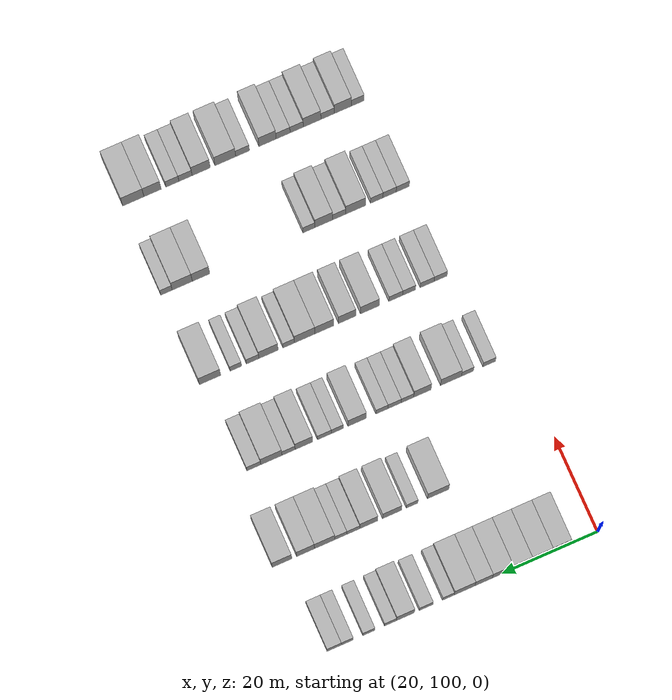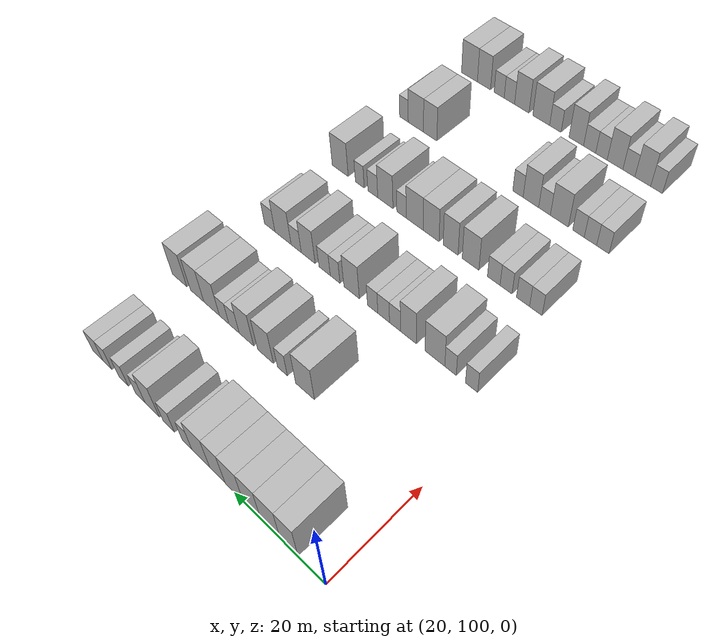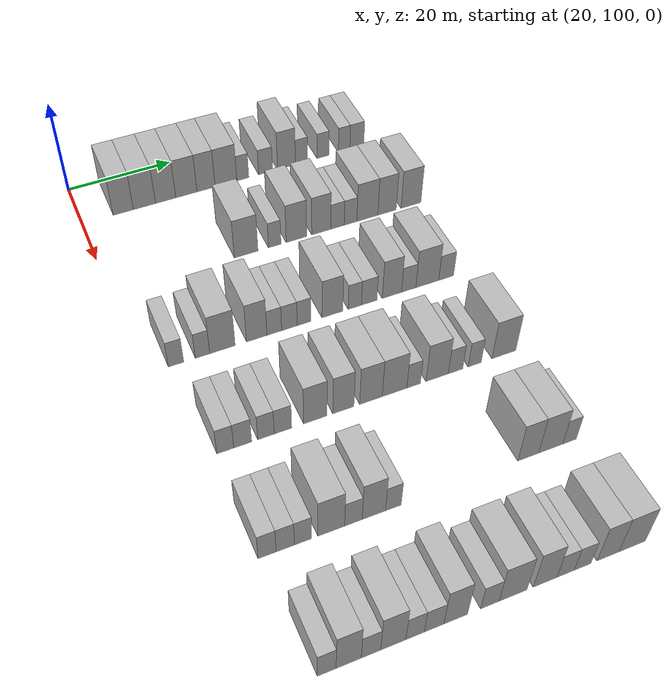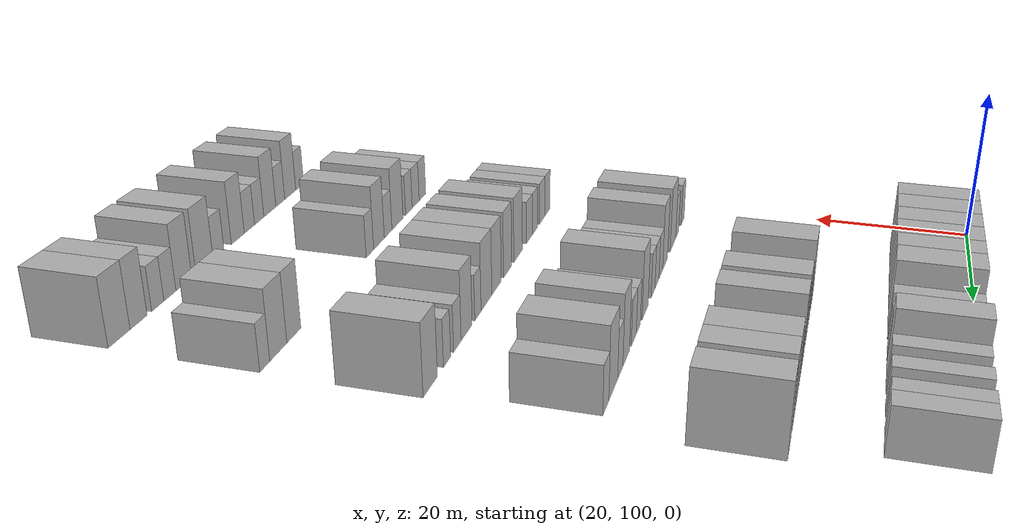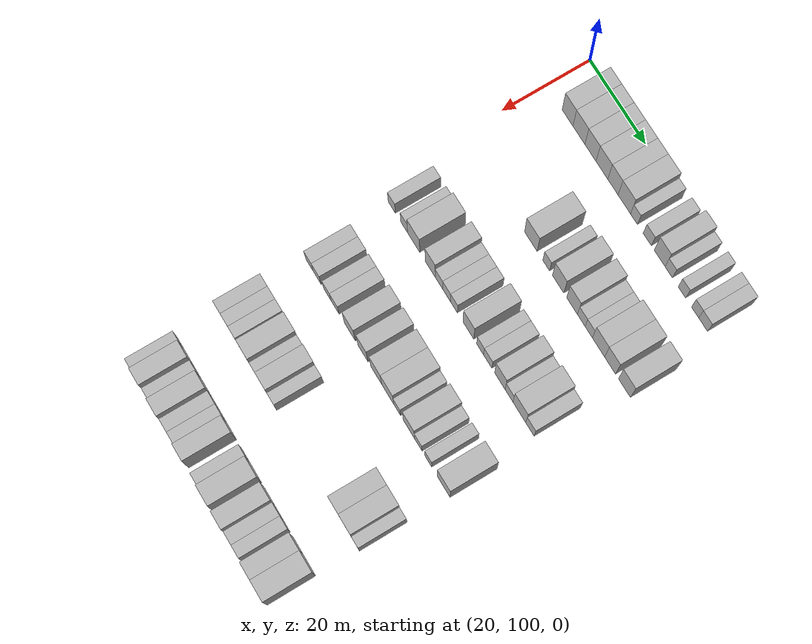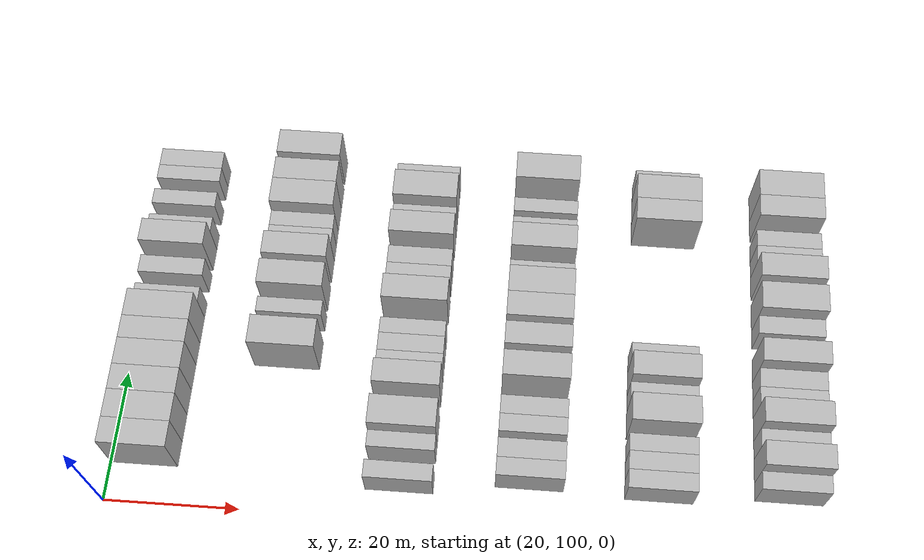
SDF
<sdf version="1.6">
 <world name="default">
  <model name="building_116">
   <static>1</static>
   <pose>25.0000 107.7792 0 0.000000 0.000000 0.000000</pose>
   <link name="link">
    <pose>0 0 4.50 0 0 0</pose>
    <collision name="collision"><geometry><box><size>10.0000 3.8784 9.0000</size></box></geometry></collision>
    <visual name="visual">
     <cast_shadows>0</cast_shadows>
     <geometry><box><size>10.0000 3.8784 9.0000</size></box></geometry>
     <material>
      <script>
       <uri>model://HANNAS_wall/materials/scripts</uri>
       <uri>model://HANNAS_wall/materials/textures</uri>
       <name>vrc/HANNAS_wall</name>
      </script>
     </material>
    </visual>
   </link>
  </model>
  <model name="building_117">
   <static>1</static>
   <pose>25.0000 111.8673 0 0.000000 0.000000 0.000000</pose>
   <link name="link">
    <pose>0 0 4.50 0 0 0</pose>
    <collision name="collision"><geometry><box><size>10.0000 4.2979 9.0000</size></box></geometry></collision>
    <visual name="visual">
     <cast_shadows>0</cast_shadows>
     <geometry><box><size>10.0000 4.2979 9.0000</size></box></geometry>
     <material>
      <script>
       <uri>model://HANNAS_wall/materials/scripts</uri>
       <uri>model://HANNAS_wall/materials/textures</uri>
       <name>vrc/HANNAS_wall</name>
      </script>
     </material>
    </visual>
   </link>
  </model>
  <model name="building_118">
   <static>1</static>
   <pose>25.0000 115.9936 0 0.000000 0.000000 0.000000</pose>
   <link name="link">
    <pose>0 0 4.50 0 0 0</pose>
    <collision name="collision"><geometry><box><size>10.0000 3.9547 9.0000</size></box></geometry></collision>
    <visual name="visual">
     <cast_shadows>0</cast_shadows>
     <geometry><box><size>10.0000 3.9547 9.0000</size></box></geometry>
     <material>
      <script>
       <uri>model://HANNAS_wall/materials/scripts</uri>
       <uri>model://HANNAS_wall/materials/textures</uri>
       <name>vrc/HANNAS_wall</name>
      </script>
     </material>
    </visual>
   </link>
  </model>
  <model name="building_119">
   <static>1</static>
   <pose>25.0000 120.0662 0 0.000000 0.000000 0.000000</pose>
   <link name="link">
    <pose>0 0 4.50 0 0 0</pose>
    <collision name="collision"><geometry><box><size>10.0000 4.1906 9.0000</size></box></geometry></collision>
    <visual name="visual">
     <cast_shadows>0</cast_shadows>
     <geometry><box><size>10.0000 4.1906 9.0000</size></box></geometry>
     <material>
      <script>
       <uri>model://HANNAS_wall/materials/scripts</uri>
       <uri>model://HANNAS_wall/materials/textures</uri>
       <name>vrc/HANNAS_wall</name>
      </script>
     </material>
    </visual>
   </link>
  </model>
  <model name="building_120">
   <static>1</static>
   <pose>25.0000 123.9743 0 0.000000 0.000000 0.000000</pose>
   <link name="link">
    <pose>0 0 4.50 0 0 0</pose>
    <collision name="collision"><geometry><box><size>10.0000 3.6255 9.0000</size></box></geometry></collision>
    <visual name="visual">
     <cast_shadows>0</cast_shadows>
     <geometry><box><size>10.0000 3.6255 9.0000</size></box></geometry>
     <material>
      <script>
       <uri>model://HANNAS_wall/materials/scripts</uri>
       <uri>model://HANNAS_wall/materials/textures</uri>
       <name>vrc/HANNAS_wall</name>
      </script>
     </material>
    </visual>
   </link>
  </model>
  <model name="building_121">
   <static>1</static>
   <pose>25.0000 127.9794 0 0.000000 0.000000 0.000000</pose>
   <link name="link">
    <pose>0 0 4.50 0 0 0</pose>
    <collision name="collision"><geometry><box><size>10.0000 4.3848 9.0000</size></box></geometry></collision>
    <visual name="visual">
     <cast_shadows>0</cast_shadows>
     <geometry><box><size>10.0000 4.3848 9.0000</size></box></geometry>
     <material>
      <script>
       <uri>model://HANNAS_wall/materials/scripts</uri>
       <uri>model://HANNAS_wall/materials/textures</uri>
       <name>vrc/HANNAS_wall</name>
      </script>
     </material>
    </visual>
   </link>
  </model>
  <model name="building_122">
   <static>1</static>
   <pose>25.0000 131.3826 0 0.000000 0.000000 0.000000</pose>
   <link name="link">
    <pose>0 0 3.00 0 0 0</pose>
    <collision name="collision"><geometry><box><size>10.0000 2.4216 6.0000</size></box></geometry></collision>
    <visual name="visual">
     <cast_shadows>0</cast_shadows>
     <geometry><box><size>10.0000 2.4216 6.0000</size></box></geometry>
     <material>
      <script>
       <uri>model://HANNAS_wall/materials/scripts</uri>
       <uri>model://HANNAS_wall/materials/textures</uri>
       <name>vrc/HANNAS_wall</name>
      </script>
     </material>
    </visual>
   </link>
  </model>
  <model name="building_123">
   <static>1</static>
   <pose>25.0000 136.0296 0 0.000000 0.000000 0.000000</pose>
   <link name="link">
    <pose>0 0 3.00 0 0 0</pose>
    <collision name="collision"><geometry><box><size>10.0000 2.8724 6.0000</size></box></geometry></collision>
    <visual name="visual">
     <cast_shadows>0</cast_shadows>
     <geometry><box><size>10.0000 2.8724 6.0000</size></box></geometry>
     <material>
      <script>
       <uri>model://HANNAS_wall/materials/scripts</uri>
       <uri>model://HANNAS_wall/materials/textures</uri>
       <name>vrc/HANNAS_wall</name>
      </script>
     </material>
    </visual>
   </link>
  </model>
  <model name="building_124">
   <static>1</static>
   <pose>25.0000 140.3420 0 0.000000 0.000000 0.000000</pose>
   <link name="link">
    <pose>0 0 4.50 0 0 0</pose>
    <collision name="collision"><geometry><box><size>10.0000 3.7524 9.0000</size></box></geometry></collision>
    <visual name="visual">
     <cast_shadows>0</cast_shadows>
     <geometry><box><size>10.0000 3.7524 9.0000</size></box></geometry>
     <material>
      <script>
       <uri>model://HANNAS_wall/materials/scripts</uri>
       <uri>model://HANNAS_wall/materials/textures</uri>
       <name>vrc/HANNAS_wall</name>
      </script>
     </material>
    </visual>
   </link>
  </model>
  <model name="building_125">
   <static>1</static>
   <pose>25.0000 143.4803 0 0.000000 0.000000 0.000000</pose>
   <link name="link">
    <pose>0 0 3.00 0 0 0</pose>
    <collision name="collision"><geometry><box><size>10.0000 2.5240 6.0000</size></box></geometry></collision>
    <visual name="visual">
     <cast_shadows>0</cast_shadows>
     <geometry><box><size>10.0000 2.5240 6.0000</size></box></geometry>
     <material>
      <script>
       <uri>model://HANNAS_wall/materials/scripts</uri>
       <uri>model://HANNAS_wall/materials/textures</uri>
       <name>vrc/HANNAS_wall</name>
      </script>
     </material>
    </visual>
   </link>
  </model>
  <model name="building_126">
   <static>1</static>
   <pose>25.0000 148.0143 0 0.000000 0.000000 0.000000</pose>
   <link name="link">
    <pose>0 0 3.00 0 0 0</pose>
    <collision name="collision"><geometry><box><size>10.0000 2.5440 6.0000</size></box></geometry></collision>
    <visual name="visual">
     <cast_shadows>0</cast_shadows>
     <geometry><box><size>10.0000 2.5440 6.0000</size></box></geometry>
     <material>
      <script>
       <uri>model://HANNAS_wall/materials/scripts</uri>
       <uri>model://HANNAS_wall/materials/textures</uri>
       <name>vrc/HANNAS_wall</name>
      </script>
     </material>
    </visual>
   </link>
  </model>
  <model name="building_127">
   <static>1</static>
   <pose>25.0000 152.5151 0 0.000000 0.000000 0.000000</pose>
   <link name="link">
    <pose>0 0 3.00 0 0 0</pose>
    <collision name="collision"><geometry><box><size>10.0000 2.4577 6.0000</size></box></geometry></collision>
    <visual name="visual">
     <cast_shadows>0</cast_shadows>
     <geometry><box><size>10.0000 2.4577 6.0000</size></box></geometry>
     <material>
      <script>
       <uri>model://HANNAS_wall/materials/scripts</uri>
       <uri>model://HANNAS_wall/materials/textures</uri>
       <name>vrc/HANNAS_wall</name>
      </script>
     </material>
    </visual>
   </link>
  </model>
  <model name="building_128">
   <static>1</static>
   <pose>25.0000 155.2427 0 0.000000 0.000000 0.000000</pose>
   <link name="link">
    <pose>0 0 3.00 0 0 0</pose>
    <collision name="collision"><geometry><box><size>10.0000 2.9975 6.0000</size></box></geometry></collision>
    <visual name="visual">
     <cast_shadows>0</cast_shadows>
     <geometry><box><size>10.0000 2.9975 6.0000</size></box></geometry>
     <material>
      <script>
       <uri>model://HANNAS_wall/materials/scripts</uri>
       <uri>model://HANNAS_wall/materials/textures</uri>
       <name>vrc/HANNAS_wall</name>
      </script>
     </material>
    </visual>
   </link>
  </model>
  <model name="building_277">
   <static>1</static>
   <pose>44.0000 125.0161 0 0.000000 0.000000 0.000000</pose>
   <link name="link">
    <pose>0 0 4.50 0 0 0</pose>
    <collision name="collision"><geometry><box><size>10.0000 4.4984 9.0000</size></box></geometry></collision>
    <visual name="visual">
     <cast_shadows>0</cast_shadows>
     <geometry><box><size>10.0000 4.4984 9.0000</size></box></geometry>
     <material>
      <script>
       <uri>model://HANNAS_wall/materials/scripts</uri>
       <uri>model://HANNAS_wall/materials/textures</uri>
       <name>vrc/HANNAS_wall</name>
      </script>
     </material>
    </visual>
   </link>
  </model>
  <model name="building_278">
   <static>1</static>
   <pose>44.0000 130.4810 0 0.000000 0.000000 0.000000</pose>
   <link name="link">
    <pose>0 0 3.00 0 0 0</pose>
    <collision name="collision"><geometry><box><size>10.0000 2.4314 6.0000</size></box></geometry></collision>
    <visual name="visual">
     <cast_shadows>0</cast_shadows>
     <geometry><box><size>10.0000 2.4314 6.0000</size></box></geometry>
     <material>
      <script>
       <uri>model://HANNAS_wall/materials/scripts</uri>
       <uri>model://HANNAS_wall/materials/textures</uri>
       <name>vrc/HANNAS_wall</name>
      </script>
     </material>
    </visual>
   </link>
  </model>
  <model name="building_279">
   <static>1</static>
   <pose>44.0000 134.6992 0 0.000000 0.000000 0.000000</pose>
   <link name="link">
    <pose>0 0 4.50 0 0 0</pose>
    <collision name="collision"><geometry><box><size>10.0000 4.0049 9.0000</size></box></geometry></collision>
    <visual name="visual">
     <cast_shadows>0</cast_shadows>
     <geometry><box><size>10.0000 4.0049 9.0000</size></box></geometry>
     <material>
      <script>
       <uri>model://HANNAS_wall/materials/scripts</uri>
       <uri>model://HANNAS_wall/materials/textures</uri>
       <name>vrc/HANNAS_wall</name>
      </script>
     </material>
    </visual>
   </link>
  </model>
  <model name="building_280">
   <static>1</static>
   <pose>44.0000 139.5868 0 0.000000 0.000000 0.000000</pose>
   <link name="link">
    <pose>0 0 4.50 0 0 0</pose>
    <collision name="collision"><geometry><box><size>10.0000 3.7703 9.0000</size></box></geometry></collision>
    <visual name="visual">
     <cast_shadows>0</cast_shadows>
     <geometry><box><size>10.0000 3.7703 9.0000</size></box></geometry>
     <material>
      <script>
       <uri>model://HANNAS_wall/materials/scripts</uri>
       <uri>model://HANNAS_wall/materials/textures</uri>
       <name>vrc/HANNAS_wall</name>
      </script>
     </material>
    </visual>
   </link>
  </model>
  <model name="building_281">
   <static>1</static>
   <pose>44.0000 142.8171 0 0.000000 0.000000 0.000000</pose>
   <link name="link">
    <pose>0 0 3.00 0 0 0</pose>
    <collision name="collision"><geometry><box><size>10.0000 2.6903 6.0000</size></box></geometry></collision>
    <visual name="visual">
     <cast_shadows>0</cast_shadows>
     <geometry><box><size>10.0000 2.6903 6.0000</size></box></geometry>
     <material>
      <script>
       <uri>model://HANNAS_wall/materials/scripts</uri>
       <uri>model://HANNAS_wall/materials/textures</uri>
       <name>vrc/HANNAS_wall</name>
      </script>
     </material>
    </visual>
   </link>
  </model>
  <model name="building_282">
   <static>1</static>
   <pose>44.0000 145.4355 0 0.000000 0.000000 0.000000</pose>
   <link name="link">
    <pose>0 0 3.00 0 0 0</pose>
    <collision name="collision"><geometry><box><size>10.0000 2.5464 6.0000</size></box></geometry></collision>
    <visual name="visual">
     <cast_shadows>0</cast_shadows>
     <geometry><box><size>10.0000 2.5464 6.0000</size></box></geometry>
     <material>
      <script>
       <uri>model://HANNAS_wall/materials/scripts</uri>
       <uri>model://HANNAS_wall/materials/textures</uri>
       <name>vrc/HANNAS_wall</name>
      </script>
     </material>
    </visual>
   </link>
  </model>
  <model name="building_283">
   <static>1</static>
   <pose>44.0000 148.8297 0 0.000000 0.000000 0.000000</pose>
   <link name="link">
    <pose>0 0 4.50 0 0 0</pose>
    <collision name="collision"><geometry><box><size>10.0000 4.2420 9.0000</size></box></geometry></collision>
    <visual name="visual">
     <cast_shadows>0</cast_shadows>
     <geometry><box><size>10.0000 4.2420 9.0000</size></box></geometry>
     <material>
      <script>
       <uri>model://HANNAS_wall/materials/scripts</uri>
       <uri>model://HANNAS_wall/materials/textures</uri>
       <name>vrc/HANNAS_wall</name>
      </script>
     </material>
    </visual>
   </link>
  </model>
  <model name="building_284">
   <static>1</static>
   <pose>44.0000 152.8318 0 0.000000 0.000000 0.000000</pose>
   <link name="link">
    <pose>0 0 4.50 0 0 0</pose>
    <collision name="collision"><geometry><box><size>10.0000 3.7622 9.0000</size></box></geometry></collision>
    <visual name="visual">
     <cast_shadows>0</cast_shadows>
     <geometry><box><size>10.0000 3.7622 9.0000</size></box></geometry>
     <material>
      <script>
       <uri>model://HANNAS_wall/materials/scripts</uri>
       <uri>model://HANNAS_wall/materials/textures</uri>
       <name>vrc/HANNAS_wall</name>
      </script>
     </material>
    </visual>
   </link>
  </model>
  <model name="building_285">
   <static>1</static>
   <pose>44.0000 157.7652 0 0.000000 0.000000 0.000000</pose>
   <link name="link">
    <pose>0 0 4.50 0 0 0</pose>
    <collision name="collision"><geometry><box><size>10.0000 4.1046 9.0000</size></box></geometry></collision>
    <visual name="visual">
     <cast_shadows>0</cast_shadows>
     <geometry><box><size>10.0000 4.1046 9.0000</size></box></geometry>
     <material>
      <script>
       <uri>model://HANNAS_wall/materials/scripts</uri>
       <uri>model://HANNAS_wall/materials/textures</uri>
       <name>vrc/HANNAS_wall</name>
      </script>
     </material>
    </visual>
   </link>
  </model>
  <model name="building_446">
   <static>1</static>
   <pose>63.0000 105.7397 0 0.000000 0.000000 0.000000</pose>
   <link name="link">
    <pose>0 0 3.00 0 0 0</pose>
    <collision name="collision"><geometry><box><size>10.0000 2.6404 6.0000</size></box></geometry></collision>
    <visual name="visual">
     <cast_shadows>0</cast_shadows>
     <geometry><box><size>10.0000 2.6404 6.0000</size></box></geometry>
     <material>
      <script>
       <uri>model://HANNAS_wall/materials/scripts</uri>
       <uri>model://HANNAS_wall/materials/textures</uri>
       <name>vrc/HANNAS_wall</name>
      </script>
     </material>
    </visual>
   </link>
  </model>
  <model name="building_447">
   <static>1</static>
   <pose>63.0000 110.3162 0 0.000000 0.000000 0.000000</pose>
   <link name="link">
    <pose>0 0 3.00 0 0 0</pose>
    <collision name="collision"><geometry><box><size>10.0000 2.5126 6.0000</size></box></geometry></collision>
    <visual name="visual">
     <cast_shadows>0</cast_shadows>
     <geometry><box><size>10.0000 2.5126 6.0000</size></box></geometry>
     <material>
      <script>
       <uri>model://HANNAS_wall/materials/scripts</uri>
       <uri>model://HANNAS_wall/materials/textures</uri>
       <name>vrc/HANNAS_wall</name>
      </script>
     </material>
    </visual>
   </link>
  </model>
  <model name="building_448">
   <static>1</static>
   <pose>63.0000 113.7956 0 0.000000 0.000000 0.000000</pose>
   <link name="link">
    <pose>0 0 4.50 0 0 0</pose>
    <collision name="collision"><geometry><box><size>10.0000 4.4463 9.0000</size></box></geometry></collision>
    <visual name="visual">
     <cast_shadows>0</cast_shadows>
     <geometry><box><size>10.0000 4.4463 9.0000</size></box></geometry>
     <material>
      <script>
       <uri>model://HANNAS_wall/materials/scripts</uri>
       <uri>model://HANNAS_wall/materials/textures</uri>
       <name>vrc/HANNAS_wall</name>
      </script>
     </material>
    </visual>
   </link>
  </model>
  <model name="building_449">
   <static>1</static>
   <pose>63.0000 119.8373 0 0.000000 0.000000 0.000000</pose>
   <link name="link">
    <pose>0 0 4.50 0 0 0</pose>
    <collision name="collision"><geometry><box><size>10.0000 3.6370 9.0000</size></box></geometry></collision>
    <visual name="visual">
     <cast_shadows>0</cast_shadows>
     <geometry><box><size>10.0000 3.6370 9.0000</size></box></geometry>
     <material>
      <script>
       <uri>model://HANNAS_wall/materials/scripts</uri>
       <uri>model://HANNAS_wall/materials/textures</uri>
       <name>vrc/HANNAS_wall</name>
      </script>
     </material>
    </visual>
   </link>
  </model>
  <model name="building_450">
   <static>1</static>
   <pose>63.0000 122.9798 0 0.000000 0.000000 0.000000</pose>
   <link name="link">
    <pose>0 0 3.00 0 0 0</pose>
    <collision name="collision"><geometry><box><size>10.0000 2.6481 6.0000</size></box></geometry></collision>
    <visual name="visual">
     <cast_shadows>0</cast_shadows>
     <geometry><box><size>10.0000 2.6481 6.0000</size></box></geometry>
     <material>
      <script>
       <uri>model://HANNAS_wall/materials/scripts</uri>
       <uri>model://HANNAS_wall/materials/textures</uri>
       <name>vrc/HANNAS_wall</name>
      </script>
     </material>
    </visual>
   </link>
  </model>
  <model name="building_451">
   <static>1</static>
   <pose>63.0000 125.7102 0 0.000000 0.000000 0.000000</pose>
   <link name="link">
    <pose>0 0 3.00 0 0 0</pose>
    <collision name="collision"><geometry><box><size>10.0000 2.8127 6.0000</size></box></geometry></collision>
    <visual name="visual">
     <cast_shadows>0</cast_shadows>
     <geometry><box><size>10.0000 2.8127 6.0000</size></box></geometry>
     <material>
      <script>
       <uri>model://HANNAS_wall/materials/scripts</uri>
       <uri>model://HANNAS_wall/materials/textures</uri>
       <name>vrc/HANNAS_wall</name>
      </script>
     </material>
    </visual>
   </link>
  </model>
  <model name="building_452">
   <static>1</static>
   <pose>63.0000 128.3841 0 0.000000 0.000000 0.000000</pose>
   <link name="link">
    <pose>0 0 3.00 0 0 0</pose>
    <collision name="collision"><geometry><box><size>10.0000 2.5350 6.0000</size></box></geometry></collision>
    <visual name="visual">
     <cast_shadows>0</cast_shadows>
     <geometry><box><size>10.0000 2.5350 6.0000</size></box></geometry>
     <material>
      <script>
       <uri>model://HANNAS_wall/materials/scripts</uri>
       <uri>model://HANNAS_wall/materials/textures</uri>
       <name>vrc/HANNAS_wall</name>
      </script>
     </material>
    </visual>
   </link>
  </model>
  <model name="building_453">
   <static>1</static>
   <pose>63.0000 133.5854 0 0.000000 0.000000 0.000000</pose>
   <link name="link">
    <pose>0 0 4.50 0 0 0</pose>
    <collision name="collision"><geometry><box><size>10.0000 3.8675 9.0000</size></box></geometry></collision>
    <visual name="visual">
     <cast_shadows>0</cast_shadows>
     <geometry><box><size>10.0000 3.8675 9.0000</size></box></geometry>
     <material>
      <script>
       <uri>model://HANNAS_wall/materials/scripts</uri>
       <uri>model://HANNAS_wall/materials/textures</uri>
       <name>vrc/HANNAS_wall</name>
      </script>
     </material>
    </visual>
   </link>
  </model>
  <model name="building_454">
   <static>1</static>
   <pose>63.0000 137.7604 0 0.000000 0.000000 0.000000</pose>
   <link name="link">
    <pose>0 0 3.00 0 0 0</pose>
    <collision name="collision"><geometry><box><size>10.0000 2.4825 6.0000</size></box></geometry></collision>
    <visual name="visual">
     <cast_shadows>0</cast_shadows>
     <geometry><box><size>10.0000 2.4825 6.0000</size></box></geometry>
     <material>
      <script>
       <uri>model://HANNAS_wall/materials/scripts</uri>
       <uri>model://HANNAS_wall/materials/textures</uri>
       <name>vrc/HANNAS_wall</name>
      </script>
     </material>
    </visual>
   </link>
  </model>
  <model name="building_455">
   <static>1</static>
   <pose>63.0000 140.4714 0 0.000000 0.000000 0.000000</pose>
   <link name="link">
    <pose>0 0 3.00 0 0 0</pose>
    <collision name="collision"><geometry><box><size>10.0000 2.9396 6.0000</size></box></geometry></collision>
    <visual name="visual">
     <cast_shadows>0</cast_shadows>
     <geometry><box><size>10.0000 2.9396 6.0000</size></box></geometry>
     <material>
      <script>
       <uri>model://HANNAS_wall/materials/scripts</uri>
       <uri>model://HANNAS_wall/materials/textures</uri>
       <name>vrc/HANNAS_wall</name>
      </script>
     </material>
    </visual>
   </link>
  </model>
  <model name="building_456">
   <static>1</static>
   <pose>63.0000 144.7791 0 0.000000 0.000000 0.000000</pose>
   <link name="link">
    <pose>0 0 4.50 0 0 0</pose>
    <collision name="collision"><geometry><box><size>10.0000 3.6759 9.0000</size></box></geometry></collision>
    <visual name="visual">
     <cast_shadows>0</cast_shadows>
     <geometry><box><size>10.0000 3.6759 9.0000</size></box></geometry>
     <material>
      <script>
       <uri>model://HANNAS_wall/materials/scripts</uri>
       <uri>model://HANNAS_wall/materials/textures</uri>
       <name>vrc/HANNAS_wall</name>
      </script>
     </material>
    </visual>
   </link>
  </model>
  <model name="building_457">
   <static>1</static>
   <pose>63.0000 148.0016 0 0.000000 0.000000 0.000000</pose>
   <link name="link">
    <pose>0 0 3.00 0 0 0</pose>
    <collision name="collision"><geometry><box><size>10.0000 2.7691 6.0000</size></box></geometry></collision>
    <visual name="visual">
     <cast_shadows>0</cast_shadows>
     <geometry><box><size>10.0000 2.7691 6.0000</size></box></geometry>
     <material>
      <script>
       <uri>model://HANNAS_wall/materials/scripts</uri>
       <uri>model://HANNAS_wall/materials/textures</uri>
       <name>vrc/HANNAS_wall</name>
      </script>
     </material>
    </visual>
   </link>
  </model>
  <model name="building_458">
   <static>1</static>
   <pose>63.0000 151.6128 0 0.000000 0.000000 0.000000</pose>
   <link name="link">
    <pose>0 0 4.50 0 0 0</pose>
    <collision name="collision"><geometry><box><size>10.0000 4.4533 9.0000</size></box></geometry></collision>
    <visual name="visual">
     <cast_shadows>0</cast_shadows>
     <geometry><box><size>10.0000 4.4533 9.0000</size></box></geometry>
     <material>
      <script>
       <uri>model://HANNAS_wall/materials/scripts</uri>
       <uri>model://HANNAS_wall/materials/textures</uri>
       <name>vrc/HANNAS_wall</name>
      </script>
     </material>
    </visual>
   </link>
  </model>
  <model name="building_459">
   <static>1</static>
   <pose>63.0000 155.2982 0 0.000000 0.000000 0.000000</pose>
   <link name="link">
    <pose>0 0 3.00 0 0 0</pose>
    <collision name="collision"><geometry><box><size>10.0000 2.9176 6.0000</size></box></geometry></collision>
    <visual name="visual">
     <cast_shadows>0</cast_shadows>
     <geometry><box><size>10.0000 2.9176 6.0000</size></box></geometry>
     <material>
      <script>
       <uri>model://HANNAS_wall/materials/scripts</uri>
       <uri>model://HANNAS_wall/materials/textures</uri>
       <name>vrc/HANNAS_wall</name>
      </script>
     </material>
    </visual>
   </link>
  </model>
  <model name="building_627">
   <static>1</static>
   <pose>82.0000 107.5091 0 0.000000 0.000000 0.000000</pose>
   <link name="link">
    <pose>0 0 3.00 0 0 0</pose>
    <collision name="collision"><geometry><box><size>10.0000 2.7491 6.0000</size></box></geometry></collision>
    <visual name="visual">
     <cast_shadows>0</cast_shadows>
     <geometry><box><size>10.0000 2.7491 6.0000</size></box></geometry>
     <material>
      <script>
       <uri>model://HANNAS_wall/materials/scripts</uri>
       <uri>model://HANNAS_wall/materials/textures</uri>
       <name>vrc/HANNAS_wall</name>
      </script>
     </material>
    </visual>
   </link>
  </model>
  <model name="building_628">
   <static>1</static>
   <pose>82.0000 110.3489 0 0.000000 0.000000 0.000000</pose>
   <link name="link">
    <pose>0 0 3.00 0 0 0</pose>
    <collision name="collision"><geometry><box><size>10.0000 2.9305 6.0000</size></box></geometry></collision>
    <visual name="visual">
     <cast_shadows>0</cast_shadows>
     <geometry><box><size>10.0000 2.9305 6.0000</size></box></geometry>
     <material>
      <script>
       <uri>model://HANNAS_wall/materials/scripts</uri>
       <uri>model://HANNAS_wall/materials/textures</uri>
       <name>vrc/HANNAS_wall</name>
      </script>
     </material>
    </visual>
   </link>
  </model>
  <model name="building_629">
   <static>1</static>
   <pose>82.0000 114.1787 0 0.000000 0.000000 0.000000</pose>
   <link name="link">
    <pose>0 0 3.00 0 0 0</pose>
    <collision name="collision"><geometry><box><size>10.0000 2.7290 6.0000</size></box></geometry></collision>
    <visual name="visual">
     <cast_shadows>0</cast_shadows>
     <geometry><box><size>10.0000 2.7290 6.0000</size></box></geometry>
     <material>
      <script>
       <uri>model://HANNAS_wall/materials/scripts</uri>
       <uri>model://HANNAS_wall/materials/textures</uri>
       <name>vrc/HANNAS_wall</name>
      </script>
     </material>
    </visual>
   </link>
  </model>
  <model name="building_630">
   <static>1</static>
   <pose>82.0000 117.0032 0 0.000000 0.000000 0.000000</pose>
   <link name="link">
    <pose>0 0 3.00 0 0 0</pose>
    <collision name="collision"><geometry><box><size>10.0000 2.9201 6.0000</size></box></geometry></collision>
    <visual name="visual">
     <cast_shadows>0</cast_shadows>
     <geometry><box><size>10.0000 2.9201 6.0000</size></box></geometry>
     <material>
      <script>
       <uri>model://HANNAS_wall/materials/scripts</uri>
       <uri>model://HANNAS_wall/materials/textures</uri>
       <name>vrc/HANNAS_wall</name>
      </script>
     </material>
    </visual>
   </link>
  </model>
  <model name="building_631">
   <static>1</static>
   <pose>82.0000 122.4516 0 0.000000 0.000000 0.000000</pose>
   <link name="link">
    <pose>0 0 4.50 0 0 0</pose>
    <collision name="collision"><geometry><box><size>10.0000 3.9767 9.0000</size></box></geometry></collision>
    <visual name="visual">
     <cast_shadows>0</cast_shadows>
     <geometry><box><size>10.0000 3.9767 9.0000</size></box></geometry>
     <material>
      <script>
       <uri>model://HANNAS_wall/materials/scripts</uri>
       <uri>model://HANNAS_wall/materials/textures</uri>
       <name>vrc/HANNAS_wall</name>
      </script>
     </material>
    </visual>
   </link>
  </model>
  <model name="building_632">
   <static>1</static>
   <pose>82.0000 127.2594 0 0.000000 0.000000 0.000000</pose>
   <link name="link">
    <pose>0 0 4.50 0 0 0</pose>
    <collision name="collision"><geometry><box><size>10.0000 3.6389 9.0000</size></box></geometry></collision>
    <visual name="visual">
     <cast_shadows>0</cast_shadows>
     <geometry><box><size>10.0000 3.6389 9.0000</size></box></geometry>
     <material>
      <script>
       <uri>model://HANNAS_wall/materials/scripts</uri>
       <uri>model://HANNAS_wall/materials/textures</uri>
       <name>vrc/HANNAS_wall</name>
      </script>
     </material>
    </visual>
   </link>
  </model>
  <model name="building_633">
   <static>1</static>
   <pose>82.0000 132.0595 0 0.000000 0.000000 0.000000</pose>
   <link name="link">
    <pose>0 0 4.50 0 0 0</pose>
    <collision name="collision"><geometry><box><size>10.0000 3.9615 9.0000</size></box></geometry></collision>
    <visual name="visual">
     <cast_shadows>0</cast_shadows>
     <geometry><box><size>10.0000 3.9615 9.0000</size></box></geometry>
     <material>
      <script>
       <uri>model://HANNAS_wall/materials/scripts</uri>
       <uri>model://HANNAS_wall/materials/textures</uri>
       <name>vrc/HANNAS_wall</name>
      </script>
     </material>
    </visual>
   </link>
  </model>
  <model name="building_634">
   <static>1</static>
   <pose>82.0000 136.2074 0 0.000000 0.000000 0.000000</pose>
   <link name="link">
    <pose>0 0 4.50 0 0 0</pose>
    <collision name="collision"><geometry><box><size>10.0000 4.3343 9.0000</size></box></geometry></collision>
    <visual name="visual">
     <cast_shadows>0</cast_shadows>
     <geometry><box><size>10.0000 4.3343 9.0000</size></box></geometry>
     <material>
      <script>
       <uri>model://HANNAS_wall/materials/scripts</uri>
       <uri>model://HANNAS_wall/materials/textures</uri>
       <name>vrc/HANNAS_wall</name>
      </script>
     </material>
    </visual>
   </link>
  </model>
  <model name="building_635">
   <static>1</static>
   <pose>82.0000 139.5930 0 0.000000 0.000000 0.000000</pose>
   <link name="link">
    <pose>0 0 3.00 0 0 0</pose>
    <collision name="collision"><geometry><box><size>10.0000 2.4368 6.0000</size></box></geometry></collision>
    <visual name="visual">
     <cast_shadows>0</cast_shadows>
     <geometry><box><size>10.0000 2.4368 6.0000</size></box></geometry>
     <material>
      <script>
       <uri>model://HANNAS_wall/materials/scripts</uri>
       <uri>model://HANNAS_wall/materials/textures</uri>
       <name>vrc/HANNAS_wall</name>
      </script>
     </material>
    </visual>
   </link>
  </model>
  <model name="building_636">
   <static>1</static>
   <pose>82.0000 143.8322 0 0.000000 0.000000 0.000000</pose>
   <link name="link">
    <pose>0 0 4.50 0 0 0</pose>
    <collision name="collision"><geometry><box><size>10.0000 4.0416 9.0000</size></box></geometry></collision>
    <visual name="visual">
     <cast_shadows>0</cast_shadows>
     <geometry><box><size>10.0000 4.0416 9.0000</size></box></geometry>
     <material>
      <script>
       <uri>model://HANNAS_wall/materials/scripts</uri>
       <uri>model://HANNAS_wall/materials/textures</uri>
       <name>vrc/HANNAS_wall</name>
      </script>
     </material>
    </visual>
   </link>
  </model>
  <model name="building_637">
   <static>1</static>
   <pose>82.0000 147.1769 0 0.000000 0.000000 0.000000</pose>
   <link name="link">
    <pose>0 0 3.00 0 0 0</pose>
    <collision name="collision"><geometry><box><size>10.0000 2.6477 6.0000</size></box></geometry></collision>
    <visual name="visual">
     <cast_shadows>0</cast_shadows>
     <geometry><box><size>10.0000 2.6477 6.0000</size></box></geometry>
     <material>
      <script>
       <uri>model://HANNAS_wall/materials/scripts</uri>
       <uri>model://HANNAS_wall/materials/textures</uri>
       <name>vrc/HANNAS_wall</name>
      </script>
     </material>
    </visual>
   </link>
  </model>
  <model name="building_638">
   <static>1</static>
   <pose>82.0000 150.7078 0 0.000000 0.000000 0.000000</pose>
   <link name="link">
    <pose>0 0 3.00 0 0 0</pose>
    <collision name="collision"><geometry><box><size>10.0000 2.4142 6.0000</size></box></geometry></collision>
    <visual name="visual">
     <cast_shadows>0</cast_shadows>
     <geometry><box><size>10.0000 2.4142 6.0000</size></box></geometry>
     <material>
      <script>
       <uri>model://HANNAS_wall/materials/scripts</uri>
       <uri>model://HANNAS_wall/materials/textures</uri>
       <name>vrc/HANNAS_wall</name>
      </script>
     </material>
    </visual>
   </link>
  </model>
  <model name="building_639">
   <static>1</static>
   <pose>82.0000 156.1523 0 0.000000 0.000000 0.000000</pose>
   <link name="link">
    <pose>0 0 4.50 0 0 0</pose>
    <collision name="collision"><geometry><box><size>10.0000 4.4747 9.0000</size></box></geometry></collision>
    <visual name="visual">
     <cast_shadows>0</cast_shadows>
     <geometry><box><size>10.0000 4.4747 9.0000</size></box></geometry>
     <material>
      <script>
       <uri>model://HANNAS_wall/materials/scripts</uri>
       <uri>model://HANNAS_wall/materials/textures</uri>
       <name>vrc/HANNAS_wall</name>
      </script>
     </material>
    </visual>
   </link>
  </model>
  <model name="building_797">
   <static>1</static>
   <pose>101.0000 107.0425 0 0.000000 0.000000 0.000000</pose>
   <link name="link">
    <pose>0 0 3.00 0 0 0</pose>
    <collision name="collision"><geometry><box><size>10.0000 2.7683 6.0000</size></box></geometry></collision>
    <visual name="visual">
     <cast_shadows>0</cast_shadows>
     <geometry><box><size>10.0000 2.7683 6.0000</size></box></geometry>
     <material>
      <script>
       <uri>model://HANNAS_wall/materials/scripts</uri>
       <uri>model://HANNAS_wall/materials/textures</uri>
       <name>vrc/HANNAS_wall</name>
      </script>
     </material>
    </visual>
   </link>
  </model>
  <model name="building_798">
   <static>1</static>
   <pose>101.0000 109.8290 0 0.000000 0.000000 0.000000</pose>
   <link name="link">
    <pose>0 0 3.00 0 0 0</pose>
    <collision name="collision"><geometry><box><size>10.0000 2.8047 6.0000</size></box></geometry></collision>
    <visual name="visual">
     <cast_shadows>0</cast_shadows>
     <geometry><box><size>10.0000 2.8047 6.0000</size></box></geometry>
     <material>
      <script>
       <uri>model://HANNAS_wall/materials/scripts</uri>
       <uri>model://HANNAS_wall/materials/textures</uri>
       <name>vrc/HANNAS_wall</name>
      </script>
     </material>
    </visual>
   </link>
  </model>
  <model name="building_799">
   <static>1</static>
   <pose>101.0000 112.5563 0 0.000000 0.000000 0.000000</pose>
   <link name="link">
    <pose>0 0 3.00 0 0 0</pose>
    <collision name="collision"><geometry><box><size>10.0000 2.6498 6.0000</size></box></geometry></collision>
    <visual name="visual">
     <cast_shadows>0</cast_shadows>
     <geometry><box><size>10.0000 2.6498 6.0000</size></box></geometry>
     <material>
      <script>
       <uri>model://HANNAS_wall/materials/scripts</uri>
       <uri>model://HANNAS_wall/materials/textures</uri>
       <name>vrc/HANNAS_wall</name>
      </script>
     </material>
    </visual>
   </link>
  </model>
  <model name="building_800">
   <static>1</static>
   <pose>101.0000 116.9889 0 0.000000 0.000000 0.000000</pose>
   <link name="link">
    <pose>0 0 4.50 0 0 0</pose>
    <collision name="collision"><geometry><box><size>10.0000 4.2154 9.0000</size></box></geometry></collision>
    <visual name="visual">
     <cast_shadows>0</cast_shadows>
     <geometry><box><size>10.0000 4.2154 9.0000</size></box></geometry>
     <material>
      <script>
       <uri>model://HANNAS_wall/materials/scripts</uri>
       <uri>model://HANNAS_wall/materials/textures</uri>
       <name>vrc/HANNAS_wall</name>
      </script>
     </material>
    </visual>
   </link>
  </model>
  <model name="building_801">
   <static>1</static>
   <pose>101.0000 120.4888 0 0.000000 0.000000 0.000000</pose>
   <link name="link">
    <pose>0 0 3.00 0 0 0</pose>
    <collision name="collision"><geometry><box><size>10.0000 2.7845 6.0000</size></box></geometry></collision>
    <visual name="visual">
     <cast_shadows>0</cast_shadows>
     <geometry><box><size>10.0000 2.7845 6.0000</size></box></geometry>
     <material>
      <script>
       <uri>model://HANNAS_wall/materials/scripts</uri>
       <uri>model://HANNAS_wall/materials/textures</uri>
       <name>vrc/HANNAS_wall</name>
      </script>
     </material>
    </visual>
   </link>
  </model>
  <model name="building_802">
   <static>1</static>
   <pose>101.0000 123.7681 0 0.000000 0.000000 0.000000</pose>
   <link name="link">
    <pose>0 0 4.50 0 0 0</pose>
    <collision name="collision"><geometry><box><size>10.0000 3.7741 9.0000</size></box></geometry></collision>
    <visual name="visual">
     <cast_shadows>0</cast_shadows>
     <geometry><box><size>10.0000 3.7741 9.0000</size></box></geometry>
     <material>
      <script>
       <uri>model://HANNAS_wall/materials/scripts</uri>
       <uri>model://HANNAS_wall/materials/textures</uri>
       <name>vrc/HANNAS_wall</name>
      </script>
     </material>
    </visual>
   </link>
  </model>
  <model name="building_803">
   <static>1</static>
   <pose>101.0000 126.9273 0 0.000000 0.000000 0.000000</pose>
   <link name="link">
    <pose>0 0 3.00 0 0 0</pose>
    <collision name="collision"><geometry><box><size>10.0000 2.5443 6.0000</size></box></geometry></collision>
    <visual name="visual">
     <cast_shadows>0</cast_shadows>
     <geometry><box><size>10.0000 2.5443 6.0000</size></box></geometry>
     <material>
      <script>
       <uri>model://HANNAS_wall/materials/scripts</uri>
       <uri>model://HANNAS_wall/materials/textures</uri>
       <name>vrc/HANNAS_wall</name>
      </script>
     </material>
    </visual>
   </link>
  </model>
  <model name="building_804">
   <static>1</static>
   <pose>101.0000 149.7209 0 0.000000 0.000000 0.000000</pose>
   <link name="link">
    <pose>0 0 4.50 0 0 0</pose>
    <collision name="collision"><geometry><box><size>10.0000 3.6809 9.0000</size></box></geometry></collision>
    <visual name="visual">
     <cast_shadows>0</cast_shadows>
     <geometry><box><size>10.0000 3.6809 9.0000</size></box></geometry>
     <material>
      <script>
       <uri>model://HANNAS_wall/materials/scripts</uri>
       <uri>model://HANNAS_wall/materials/textures</uri>
       <name>vrc/HANNAS_wall</name>
      </script>
     </material>
    </visual>
   </link>
  </model>
  <model name="building_805">
   <static>1</static>
   <pose>101.0000 153.6821 0 0.000000 0.000000 0.000000</pose>
   <link name="link">
    <pose>0 0 4.50 0 0 0</pose>
    <collision name="collision"><geometry><box><size>10.0000 4.2414 9.0000</size></box></geometry></collision>
    <visual name="visual">
     <cast_shadows>0</cast_shadows>
     <geometry><box><size>10.0000 4.2414 9.0000</size></box></geometry>
     <material>
      <script>
       <uri>model://HANNAS_wall/materials/scripts</uri>
       <uri>model://HANNAS_wall/materials/textures</uri>
       <name>vrc/HANNAS_wall</name>
      </script>
     </material>
    </visual>
   </link>
  </model>
  <model name="building_806">
   <static>1</static>
   <pose>101.0000 157.0127 0 0.000000 0.000000 0.000000</pose>
   <link name="link">
    <pose>0 0 3.00 0 0 0</pose>
    <collision name="collision"><geometry><box><size>10.0000 2.4200 6.0000</size></box></geometry></collision>
    <visual name="visual">
     <cast_shadows>0</cast_shadows>
     <geometry><box><size>10.0000 2.4200 6.0000</size></box></geometry>
     <material>
      <script>
       <uri>model://HANNAS_wall/materials/scripts</uri>
       <uri>model://HANNAS_wall/materials/textures</uri>
       <name>vrc/HANNAS_wall</name>
      </script>
     </material>
    </visual>
   </link>
  </model>
  <model name="building_967">
   <static>1</static>
   <pose>120.0000 108.1310 0 0.000000 0.000000 0.000000</pose>
   <link name="link">
    <pose>0 0 3.00 0 0 0</pose>
    <collision name="collision"><geometry><box><size>10.0000 2.6865 6.0000</size></box></geometry></collision>
    <visual name="visual">
     <cast_shadows>0</cast_shadows>
     <geometry><box><size>10.0000 2.6865 6.0000</size></box></geometry>
     <material>
      <script>
       <uri>model://HANNAS_wall/materials/scripts</uri>
       <uri>model://HANNAS_wall/materials/textures</uri>
       <name>vrc/HANNAS_wall</name>
      </script>
     </material>
    </visual>
   </link>
  </model>
  <model name="building_968">
   <static>1</static>
   <pose>120.0000 111.2994 0 0.000000 0.000000 0.000000</pose>
   <link name="link">
    <pose>0 0 4.50 0 0 0</pose>
    <collision name="collision"><geometry><box><size>10.0000 3.6502 9.0000</size></box></geometry></collision>
    <visual name="visual">
     <cast_shadows>0</cast_shadows>
     <geometry><box><size>10.0000 3.6502 9.0000</size></box></geometry>
     <material>
      <script>
       <uri>model://HANNAS_wall/materials/scripts</uri>
       <uri>model://HANNAS_wall/materials/textures</uri>
       <name>vrc/HANNAS_wall</name>
      </script>
     </material>
    </visual>
   </link>
  </model>
  <model name="building_969">
   <static>1</static>
   <pose>120.0000 114.5448 0 0.000000 0.000000 0.000000</pose>
   <link name="link">
    <pose>0 0 3.00 0 0 0</pose>
    <collision name="collision"><geometry><box><size>10.0000 2.8407 6.0000</size></box></geometry></collision>
    <visual name="visual">
     <cast_shadows>0</cast_shadows>
     <geometry><box><size>10.0000 2.8407 6.0000</size></box></geometry>
     <material>
      <script>
       <uri>model://HANNAS_wall/materials/scripts</uri>
       <uri>model://HANNAS_wall/materials/textures</uri>
       <name>vrc/HANNAS_wall</name>
      </script>
     </material>
    </visual>
   </link>
  </model>
  <model name="building_970">
   <static>1</static>
   <pose>120.0000 117.8379 0 0.000000 0.000000 0.000000</pose>
   <link name="link">
    <pose>0 0 4.50 0 0 0</pose>
    <collision name="collision"><geometry><box><size>10.0000 3.7455 9.0000</size></box></geometry></collision>
    <visual name="visual">
     <cast_shadows>0</cast_shadows>
     <geometry><box><size>10.0000 3.7455 9.0000</size></box></geometry>
     <material>
      <script>
       <uri>model://HANNAS_wall/materials/scripts</uri>
       <uri>model://HANNAS_wall/materials/textures</uri>
       <name>vrc/HANNAS_wall</name>
      </script>
     </material>
    </visual>
   </link>
  </model>
  <model name="building_971">
   <static>1</static>
   <pose>120.0000 121.1058 0 0.000000 0.000000 0.000000</pose>
   <link name="link">
    <pose>0 0 3.00 0 0 0</pose>
    <collision name="collision"><geometry><box><size>10.0000 2.7903 6.0000</size></box></geometry></collision>
    <visual name="visual">
     <cast_shadows>0</cast_shadows>
     <geometry><box><size>10.0000 2.7903 6.0000</size></box></geometry>
     <material>
      <script>
       <uri>model://HANNAS_wall/materials/scripts</uri>
       <uri>model://HANNAS_wall/materials/textures</uri>
       <name>vrc/HANNAS_wall</name>
      </script>
     </material>
    </visual>
   </link>
  </model>
  <model name="building_972">
   <static>1</static>
   <pose>120.0000 123.9909 0 0.000000 0.000000 0.000000</pose>
   <link name="link">
    <pose>0 0 3.00 0 0 0</pose>
    <collision name="collision"><geometry><box><size>10.0000 2.9800 6.0000</size></box></geometry></collision>
    <visual name="visual">
     <cast_shadows>0</cast_shadows>
     <geometry><box><size>10.0000 2.9800 6.0000</size></box></geometry>
     <material>
      <script>
       <uri>model://HANNAS_wall/materials/scripts</uri>
       <uri>model://HANNAS_wall/materials/textures</uri>
       <name>vrc/HANNAS_wall</name>
      </script>
     </material>
    </visual>
   </link>
  </model>
  <model name="building_973">
   <static>1</static>
   <pose>120.0000 127.3016 0 0.000000 0.000000 0.000000</pose>
   <link name="link">
    <pose>0 0 4.50 0 0 0</pose>
    <collision name="collision"><geometry><box><size>10.0000 3.6414 9.0000</size></box></geometry></collision>
    <visual name="visual">
     <cast_shadows>0</cast_shadows>
     <geometry><box><size>10.0000 3.6414 9.0000</size></box></geometry>
     <material>
      <script>
       <uri>model://HANNAS_wall/materials/scripts</uri>
       <uri>model://HANNAS_wall/materials/textures</uri>
       <name>vrc/HANNAS_wall</name>
      </script>
     </material>
    </visual>
   </link>
  </model>
  <model name="building_974">
   <static>1</static>
   <pose>120.0000 132.5819 0 0.000000 0.000000 0.000000</pose>
   <link name="link">
    <pose>0 0 3.00 0 0 0</pose>
    <collision name="collision"><geometry><box><size>10.0000 2.9192 6.0000</size></box></geometry></collision>
    <visual name="visual">
     <cast_shadows>0</cast_shadows>
     <geometry><box><size>10.0000 2.9192 6.0000</size></box></geometry>
     <material>
      <script>
       <uri>model://HANNAS_wall/materials/scripts</uri>
       <uri>model://HANNAS_wall/materials/textures</uri>
       <name>vrc/HANNAS_wall</name>
      </script>
     </material>
    </visual>
   </link>
  </model>
  <model name="building_975">
   <static>1</static>
   <pose>120.0000 136.2393 0 0.000000 0.000000 0.000000</pose>
   <link name="link">
    <pose>0 0 4.50 0 0 0</pose>
    <collision name="collision"><geometry><box><size>10.0000 4.3957 9.0000</size></box></geometry></collision>
    <visual name="visual">
     <cast_shadows>0</cast_shadows>
     <geometry><box><size>10.0000 4.3957 9.0000</size></box></geometry>
     <material>
      <script>
       <uri>model://HANNAS_wall/materials/scripts</uri>
       <uri>model://HANNAS_wall/materials/textures</uri>
       <name>vrc/HANNAS_wall</name>
      </script>
     </material>
    </visual>
   </link>
  </model>
  <model name="building_976">
   <static>1</static>
   <pose>120.0000 141.3536 0 0.000000 0.000000 0.000000</pose>
   <link name="link">
    <pose>0 0 4.50 0 0 0</pose>
    <collision name="collision"><geometry><box><size>10.0000 3.8329 9.0000</size></box></geometry></collision>
    <visual name="visual">
     <cast_shadows>0</cast_shadows>
     <geometry><box><size>10.0000 3.8329 9.0000</size></box></geometry>
     <material>
      <script>
       <uri>model://HANNAS_wall/materials/scripts</uri>
       <uri>model://HANNAS_wall/materials/textures</uri>
       <name>vrc/HANNAS_wall</name>
      </script>
     </material>
    </visual>
   </link>
  </model>
  <model name="building_977">
   <static>1</static>
   <pose>120.0000 144.6742 0 0.000000 0.000000 0.000000</pose>
   <link name="link">
    <pose>0 0 3.00 0 0 0</pose>
    <collision name="collision"><geometry><box><size>10.0000 2.8081 6.0000</size></box></geometry></collision>
    <visual name="visual">
     <cast_shadows>0</cast_shadows>
     <geometry><box><size>10.0000 2.8081 6.0000</size></box></geometry>
     <material>
      <script>
       <uri>model://HANNAS_wall/materials/scripts</uri>
       <uri>model://HANNAS_wall/materials/textures</uri>
       <name>vrc/HANNAS_wall</name>
      </script>
     </material>
    </visual>
   </link>
  </model>
  <model name="building_978">
   <static>1</static>
   <pose>120.0000 147.4521 0 0.000000 0.000000 0.000000</pose>
   <link name="link">
    <pose>0 0 3.00 0 0 0</pose>
    <collision name="collision"><geometry><box><size>10.0000 2.7477 6.0000</size></box></geometry></collision>
    <visual name="visual">
     <cast_shadows>0</cast_shadows>
     <geometry><box><size>10.0000 2.7477 6.0000</size></box></geometry>
     <material>
      <script>
       <uri>model://HANNAS_wall/materials/scripts</uri>
       <uri>model://HANNAS_wall/materials/textures</uri>
       <name>vrc/HANNAS_wall</name>
      </script>
     </material>
    </visual>
   </link>
  </model>
  <model name="building_979">
   <static>1</static>
   <pose>120.0000 151.6518 0 0.000000 0.000000 0.000000</pose>
   <link name="link">
    <pose>0 0 4.50 0 0 0</pose>
    <collision name="collision"><geometry><box><size>10.0000 3.6516 9.0000</size></box></geometry></collision>
    <visual name="visual">
     <cast_shadows>0</cast_shadows>
     <geometry><box><size>10.0000 3.6516 9.0000</size></box></geometry>
     <material>
      <script>
       <uri>model://HANNAS_wall/materials/scripts</uri>
       <uri>model://HANNAS_wall/materials/textures</uri>
       <name>vrc/HANNAS_wall</name>
      </script>
     </material>
    </visual>
   </link>
  </model>
  <model name="building_980">
   <static>1</static>
   <pose>120.0000 155.7216 0 0.000000 0.000000 0.000000</pose>
   <link name="link">
    <pose>0 0 4.50 0 0 0</pose>
    <collision name="collision"><geometry><box><size>10.0000 4.4880 9.0000</size></box></geometry></collision>
    <visual name="visual">
     <cast_shadows>0</cast_shadows>
     <geometry><box><size>10.0000 4.4880 9.0000</size></box></geometry>
     <material>
      <script>
       <uri>model://HANNAS_wall/materials/scripts</uri>
       <uri>model://HANNAS_wall/materials/textures</uri>
       <name>vrc/HANNAS_wall</name>
      </script>
     </material>
    </visual>
   </link>
  </model>
 </world>
</sdf>
